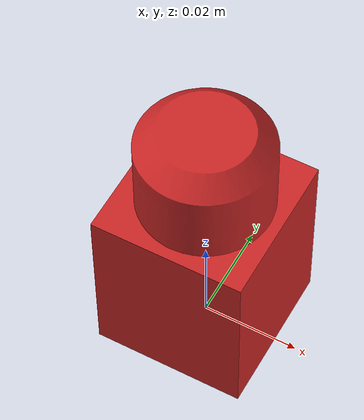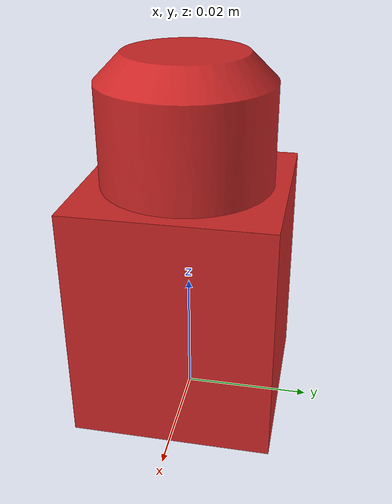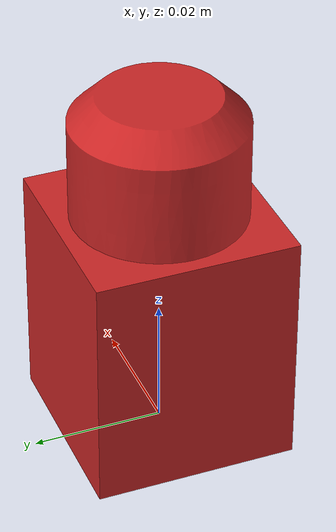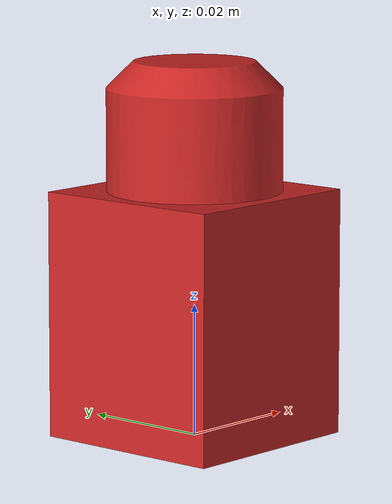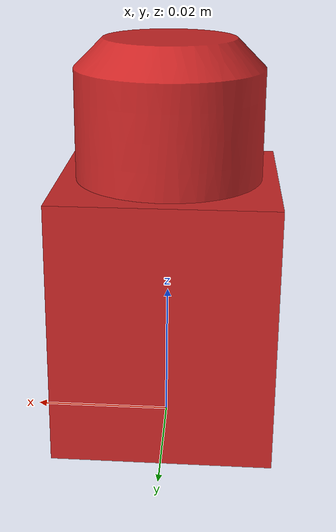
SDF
<?xml version='1.0'?>
<sdf version="1.6">

         <model name="mesh_X1-Y1-Z2">
             <static>0</static>
             <self_collide>0</self_collide>
             <allow_auto_disable>1</allow_auto_disable>

             <pose>0 0 0 0 -0 0</pose>

             <link name="link">

                 <gravity>1</gravity>
                 <self_collide>0</self_collide>
                 <kinematic>0</kinematic>

                 <inertial>
                    <!-- Volume:  7.9747940000e-06 -->
                    <mass> 10.0 </mass>

                    <!-- Center of mass:  1.4400000000e-06 -5.0000000000e-08  2.7859970000e-02 -->
                    <pose>  1.4400000000e-06 -5.0000000000e-08  2.7859970000e-02 0 0 0 </pose>

                    <!-- Inertia matrix -->
                    <inertia>
                        <ixx>  3.8954745414e-04 </ixx>
                        <ixy>  3.3856673915e-10 </ixy>
                        <ixz> -3.0082281749e-08 </ixz>
                        <iyy>  3.8955472706e-04 </iyy>
                        <iyz> -2.9217055638e-09 </iyz>
                        <izz>  2.4825571670e-04 </izz>
                    </inertia>
                </inertial>

                 <collision name="collision">
                     <!--
                         Maximum number of contacts allowed between two entities.
                         This value overrides the max_contacts element defined in physics.
                     -->
                     <max_contacts>20</max_contacts>

                    <pose>0 0 0 0 -0 0</pose>

                     <geometry>
                         <mesh>
                             <uri>model://X1-Y1-Z2/mesh/X1-Y1-Z2.stl</uri>
                             <!-- Scaling factor applied to the mesh -->
                             <scale>1.0 1.0 1.0</scale>
                         </mesh>
                     </geometry>
                     <!-- http://sdformat.org/spec?ver=1.6&elem=collision#surface_soft_contact -->
                     <surface></surface>
                 </collision>

                 <visual name="visual">
                     <cast_shadows>1</cast_shadows>
                     <transparency>0</transparency>

                    <pose>0 0 0 0 -0 0</pose>
                     <material>

                         <script>
                             <uri>file://media/materials/scripts/gazebo.material</uri>
                             <name>Gazebo/Red</name>
                         </script>
                         <shader type="vertex">
                           <normal_map>__default__</normal_map>
                         </shader>

                         <lighting>1</lighting>
 		                <ambient>0.15 0.75 0.35 1</ambient>
 		                <diffuse>0.1 0.95 0.25 1</diffuse>
 		                <specular>0.01 0.01 0.01 1</specular>
 		                <emissive>0 0 0 1</emissive>
                     </material>

                     <geometry>
                         <mesh>
                             <uri>model://X1-Y1-Z2/mesh/X1-Y1-Z2.stl</uri>
                             <!-- Scaling factor applied to the mesh -->
                             <scale>1.0 1.0 1.0</scale>
                         </mesh>
                     </geometry>
                 </visual>
             </link>
         </model>
     </sdf>
